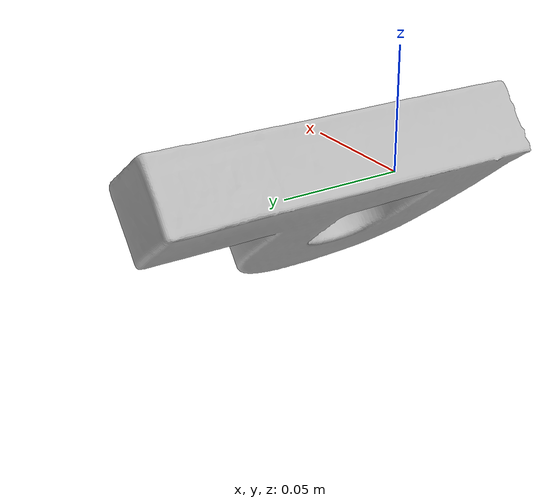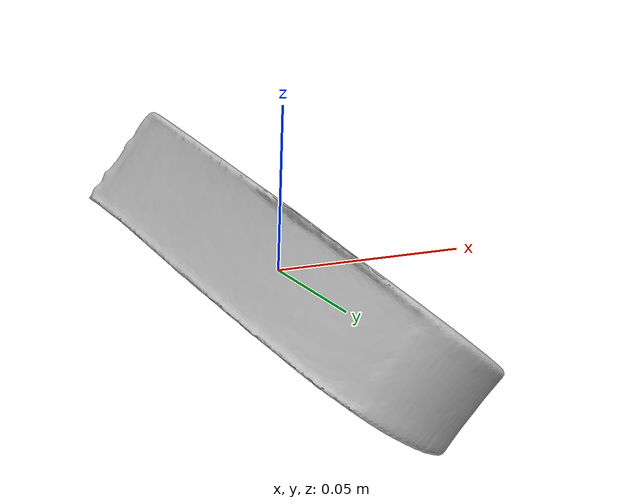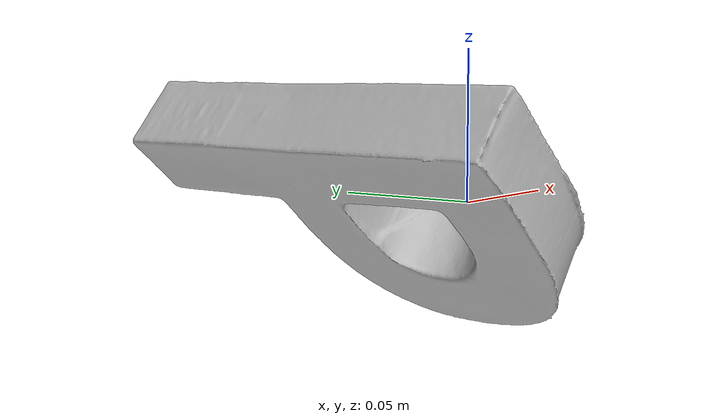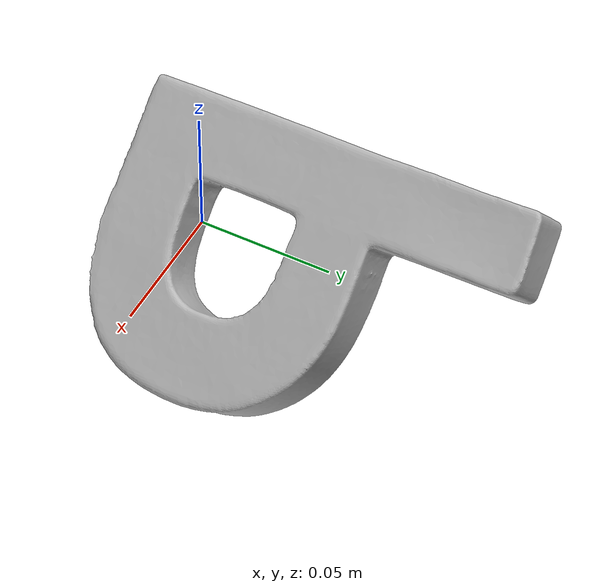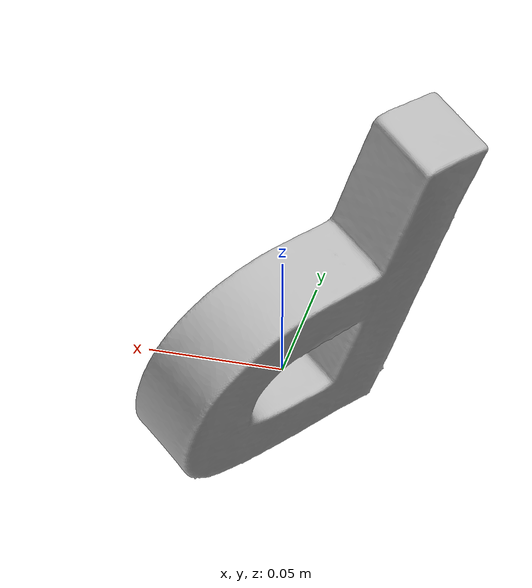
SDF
<?xml version='1.0'?>
<sdf version="1.4">
  <model name="LetterP">
    <static>false</static>
    <link name="link">
      <inertial>
        <pose>0.00021774853023324482 0.034815586817119784 0.0004972237164730446 -1.9257566882651167 0.8760836305443063 3.131897102892543</pose>
        <mass>0.035791250651900995</mass>
        <inertia>
          <ixx>7.970211772456593e-05</ixx>
          <ixy>-1.3565912424590043e-20</ixy>
          <ixz>1.4521170294393569e-21</ixz>
          <iyy>5.836820221433187e-05</iyy>
          <iyz>8.828621894781919e-21</iyz>
          <izz>2.6621139530553115e-05</izz>
        </inertia>
      </inertial>
      <collision name="collision">
        <geometry>
          <mesh>
            <!-- Use a downsampled mesh for collisions -->
            <uri>model:///LetterP/LetterP_250_collision.obj</uri>
	        </mesh>
        </geometry>
        <surface>
      </surface>
      </collision>
      <visual name="visual">
        <geometry>
          <mesh>
            <uri>model:///LetterP/LetterP_25k_tex.obj</uri>
	        </mesh>
        </geometry>
        <material>
          <script>
            <uri>model:///LetterP/LetterP.material</uri>
            <name>LetterP</name>
          </script>
        </material>
      </visual>
    </link>
  </model>
</sdf>
